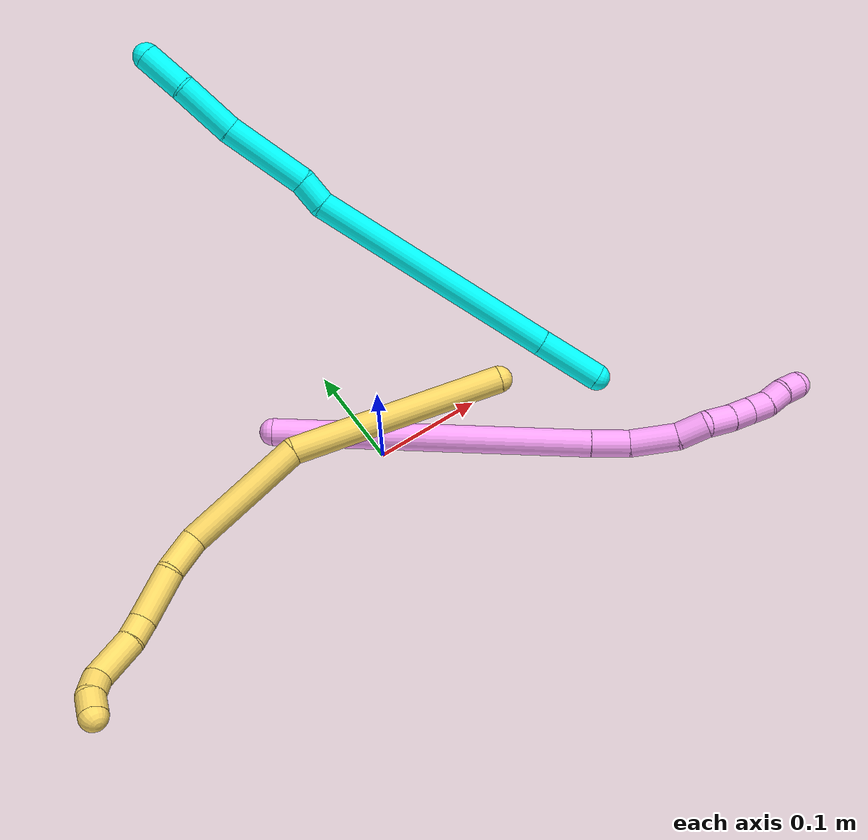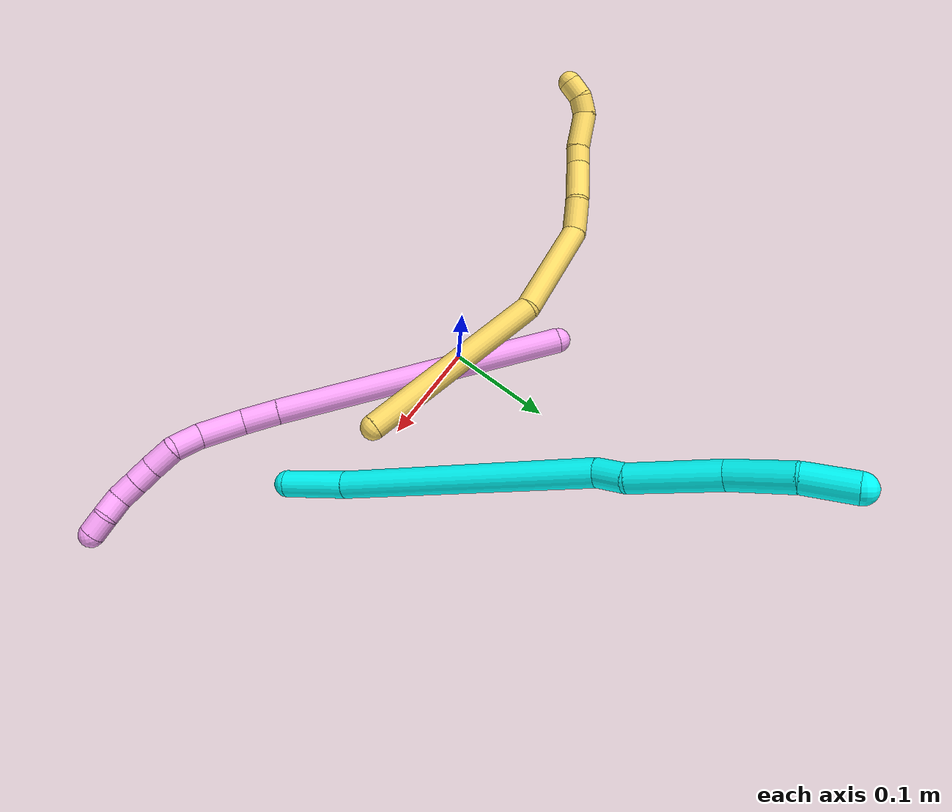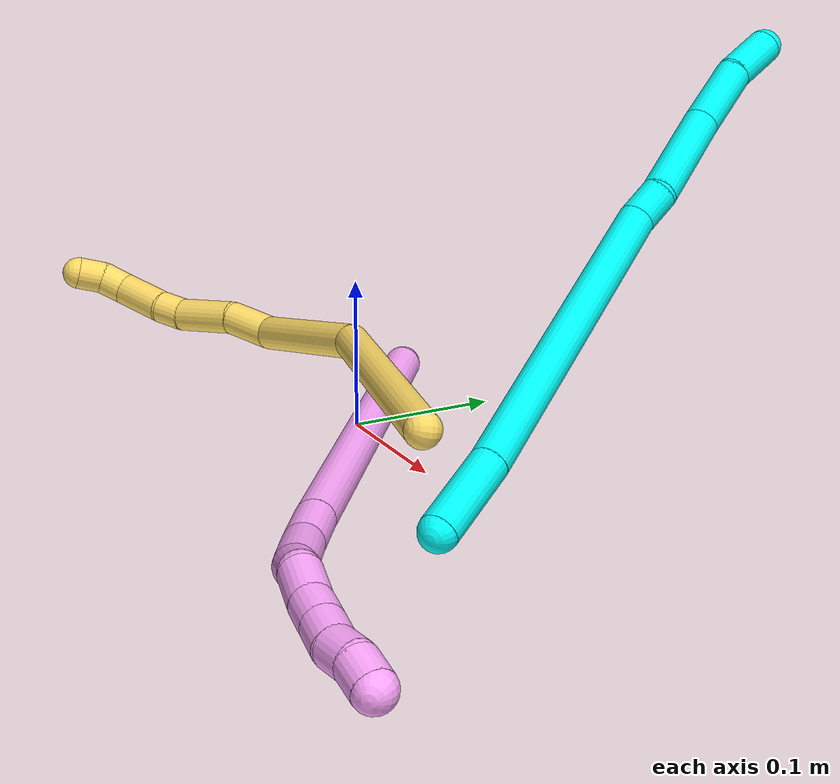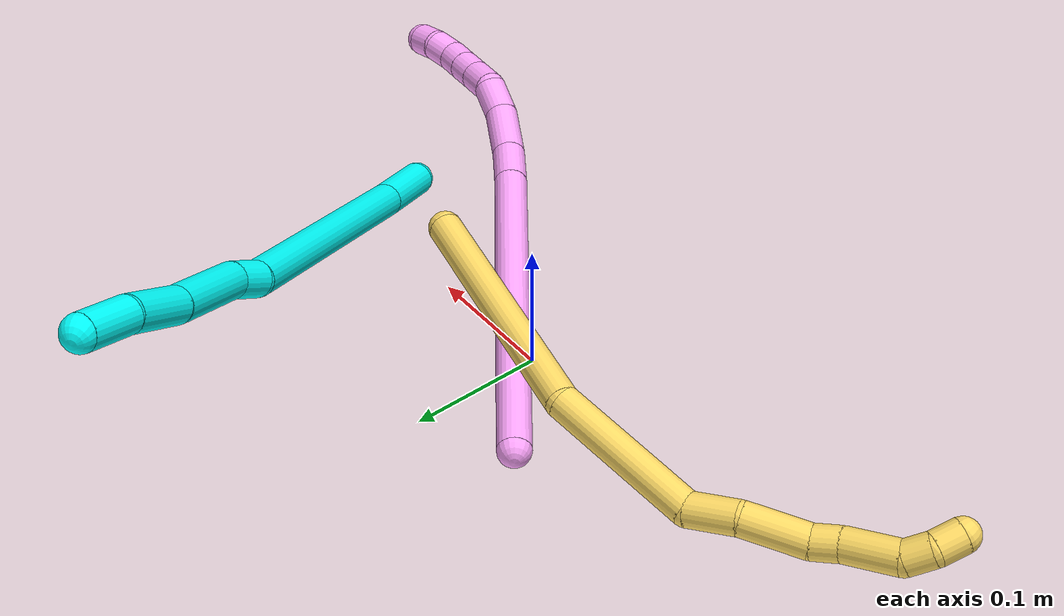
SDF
<sdf version="1.7">
 <world name="default">
  <model name="photoneo_s_sensor">
   <static>1</static>
   <pose>0 0 2 1.57079 1.57079 3.14159</pose>
   <link name="link">
    <inertial><mass>0.1</mass></inertial>
    <sensor name="sensor" type="depth">
     <update_rate>30</update_rate>
     <camera>
      <horizontal_fov>1.22</horizontal_fov>
      <image><width>1920</width><height>1200</height><format>B8G8R8</format></image>
      <clip><near>0.1</near><far>4</far></clip>
      <depth_camera><output>points</output></depth_camera>
     </camera>
     <plugin name="camera_plugin" filename="libgazebo_ros_depth_camera.so">
      <baseline>0.2</baseline>
      <alwaysOn>1</alwaysOn>
      <updateRate>0.0</updateRate>
      <cameraName>camera_ir</cameraName>
      <imageTopicName>/camera/color/image_raw</imageTopicName>
      <cameraInfoTopicName>/camera/color/camera_info</cameraInfoTopicName>
      <depthImageTopicName>/camera/depth/image_raw</depthImageTopicName>
      <depthImageCameraInfoTopicName>/camera/depth/camera_info</depthImageCameraInfoTopicName>
      <pointCloudTopicName>/camera/depth/points</pointCloudTopicName>
      <frameName>fr_optical</frameName>
      <pointCloudCutoff>0.1</pointCloudCutoff>
      <pointCloudCutoffMax>2.0</pointCloudCutoffMax>
      <distortionK1>0</distortionK1>
      <distortionK2>0</distortionK2>
      <distortionK3>0</distortionK3>
      <distortionT1>0</distortionT1>
      <distortionT2>0</distortionT2>
      <CxPrime>0</CxPrime>
      <Cx>0</Cx>
      <Cy>0</Cy>
      <focalLength>0</focalLength>
      <hackBaseline>0</hackBaseline>
     </plugin>
    </sensor>
   </link>
  </model>
  <model name="bin">
   <static>1</static>
   <link name="bottom">
    <collision name="collision-bottom">
     <pose>0 0 -0.01 0 -0 0</pose>
     <geometry><box><size>0.8 0.6 0.02</size></box></geometry>
     <surface>
      <friction><ode><mu>100</mu><mu2>100</mu2></ode></friction>
      <contact><collide_bitmask>65535</collide_bitmask></contact>
     </surface>
    </collision>
   </link>
   <link name="west_wall">
    <collision name="collision-west_wall">
     <pose>-0.41 0 0.1 0 -0 0</pose>
     <geometry><box><size>0.02 0.6 0.2</size></box></geometry>
     <surface>
      <friction><ode><mu>100</mu><mu2>100</mu2></ode></friction>
      <contact><collide_bitmask>65535</collide_bitmask></contact>
     </surface>
    </collision>
   </link>
   <link name="east_wall">
    <collision name="collision-east_wall">
     <pose>0.41 0 0.1 0 -0 0</pose>
     <geometry><box><size>0.02 0.6 0.2</size></box></geometry>
     <surface>
      <friction><ode><mu>100</mu><mu2>100</mu2></ode></friction>
      <contact><collide_bitmask>65535</collide_bitmask></contact>
     </surface>
    </collision>
   </link>
   <link name="south_wall">
    <collision name="collision-south_wall">
     <pose>0 -0.31 0.1 0 -0 0</pose>
     <geometry><box><size>0.8 0.02 0.2</size></box></geometry>
     <surface>
      <friction><ode><mu>100</mu><mu2>100</mu2></ode></friction>
      <contact><collide_bitmask>65535</collide_bitmask></contact>
     </surface>
    </collision>
   </link>
   <link name="north_wall">
    <collision name="collision-north_wall">
     <pose>0 0.31 0.1 0 -0 0</pose>
     <geometry><box><size>0.8 0.02 0.2</size></box></geometry>
     <surface>
      <friction><ode><mu>100</mu><mu2>100</mu2></ode></friction>
      <contact><collide_bitmask>65535</collide_bitmask></contact>
     </surface>
    </collision>
   </link>
  </model>
  <model name="3">
   <static>0</static>
   <link name="3">
    <collision name="collision-cylinder-e_1_1_4">
     <pose>-0.006073 0.006809 0.029231 -0.228858 -0.199635 0.02302</pose>
     <geometry><cylinder><radius>0.0125</radius><length>0.061244</length></cylinder></geometry>
     <surface>
      <friction><ode><mu>1.16</mu><mu2>1.16</mu2><slip1>0</slip1><slip2>0</slip2></ode></friction>
      <contact><ode><kp>1e+06</kp><kd>1</kd><max_vel>0</max_vel><min_depth>0.001</min_depth></ode></contact>
     </surface>
    </collision>
    <visual name="visual-cylinder-e_1_1_4">
     <pose>-0.006073 0.006809 0.029231 -0.228858 -0.199635 0.02302</pose>
     <geometry><cylinder><radius>0.0125</radius><length>0.061244</length></cylinder></geometry>
     <material><ambient>0.003922 1 0.996078 1</ambient></material>
    </visual>
    <collision name="collision-cylinder-e_2_4_5">
     <pose>-0.034601 0.049516 0.169553 -0.312548 -0.190024 0.030028</pose>
     <geometry><cylinder><radius>0.0125</radius><length>0.237773</length></cylinder></geometry>
     <surface>
      <friction><ode><mu>1.16</mu><mu2>1.16</mu2><slip1>0</slip1><slip2>0</slip2></ode></friction>
      <contact><ode><kp>1e+06</kp><kd>1</kd><max_vel>0</max_vel><min_depth>0.001</min_depth></ode></contact>
     </surface>
    </collision>
    <visual name="visual-cylinder-e_2_4_5">
     <pose>-0.034601 0.049516 0.169553 -0.312548 -0.190024 0.030028</pose>
     <geometry><cylinder><radius>0.0125</radius><length>0.237773</length></cylinder></geometry>
     <material><ambient>0.003922 1 0.996078 1</ambient></material>
    </visual>
    <collision name="collision-cylinder-e_3_5_6">
     <pose>-0.063509 0.089551 0.291637 -0.3599 -0.502304 0.093281</pose>
     <geometry><cylinder><radius>0.0125</radius><length>0.026804</length></cylinder></geometry>
     <surface>
      <friction><ode><mu>1.16</mu><mu2>1.16</mu2><slip1>0</slip1><slip2>0</slip2></ode></friction>
      <contact><ode><kp>1e+06</kp><kd>1</kd><max_vel>0</max_vel><min_depth>0.001</min_depth></ode></contact>
     </surface>
    </collision>
    <visual name="visual-cylinder-e_3_5_6">
     <pose>-0.063509 0.089551 0.291637 -0.3599 -0.502304 0.093281</pose>
     <geometry><cylinder><radius>0.0125</radius><length>0.026804</length></cylinder></geometry>
     <material><ambient>0.003922 1 0.996078 1</ambient></material>
    </visual>
    <collision name="collision-cylinder-e_4_6_7">
     <pose>-0.079013 0.106702 0.338456 -0.34846 -0.233177 0.041224</pose>
     <geometry><cylinder><radius>0.0125</radius><length>0.078351</length></cylinder></geometry>
     <surface>
      <friction><ode><mu>1.16</mu><mu2>1.16</mu2><slip1>0</slip1><slip2>0</slip2></ode></friction>
      <contact><ode><kp>1e+06</kp><kd>1</kd><max_vel>0</max_vel><min_depth>0.001</min_depth></ode></contact>
     </surface>
    </collision>
    <visual name="visual-cylinder-e_4_6_7">
     <pose>-0.079013 0.106702 0.338456 -0.34846 -0.233177 0.041224</pose>
     <geometry><cylinder><radius>0.0125</radius><length>0.078351</length></cylinder></geometry>
     <material><ambient>0.003922 1 0.996078 1</ambient></material>
    </visual>
    <collision name="collision-cylinder-e_5_7_8">
     <pose>-0.09738 0.12953 0.397661 -0.397392 -0.352022 0.071591</pose>
     <geometry><cylinder><radius>0.0125</radius><length>0.054027</length></cylinder></geometry>
     <surface>
      <friction><ode><mu>1.16</mu><mu2>1.16</mu2><slip1>0</slip1><slip2>0</slip2></ode></friction>
      <contact><ode><kp>1e+06</kp><kd>1</kd><max_vel>0</max_vel><min_depth>0.001</min_depth></ode></contact>
     </surface>
    </collision>
    <visual name="visual-cylinder-e_5_7_8">
     <pose>-0.09738 0.12953 0.397661 -0.397392 -0.352022 0.071591</pose>
     <geometry><cylinder><radius>0.0125</radius><length>0.054027</length></cylinder></geometry>
     <material><ambient>0.003922 1 0.996078 1</ambient></material>
    </visual>
    <collision name="collision-cylinder-e_6_8_2">
     <pose>-0.114246 0.142727 0.440234 -0.174523 -0.369697 0.032713</pose>
     <geometry><cylinder><radius>0.0125</radius><length>0.041802</length></cylinder></geometry>
     <surface>
      <friction><ode><mu>1.16</mu><mu2>1.16</mu2><slip1>0</slip1><slip2>0</slip2></ode></friction>
      <contact><ode><kp>1e+06</kp><kd>1</kd><max_vel>0</max_vel><min_depth>0.001</min_depth></ode></contact>
     </surface>
    </collision>
    <visual name="visual-cylinder-e_6_8_2">
     <pose>-0.114246 0.142727 0.440234 -0.174523 -0.369697 0.032713</pose>
     <geometry><cylinder><radius>0.0125</radius><length>0.041802</length></cylinder></geometry>
     <material><ambient>0.003922 1 0.996078 1</ambient></material>
    </visual>
    <collision name="collision-sphere-2">
     <pose>-0.121798 0.146111 0.459427 0 -0 0</pose>
     <geometry><sphere><radius>0.0125</radius></sphere></geometry>
     <surface>
      <friction><ode><mu>1.16</mu><mu2>1.16</mu2><slip1>0</slip1><slip2>0</slip2></ode></friction>
      <contact><ode><kp>1e+06</kp><kd>1</kd><max_vel>0</max_vel><min_depth>0.001</min_depth></ode></contact>
     </surface>
    </collision>
    <visual name="visual-sphere-2">
     <pose>-0.121798 0.146111 0.459427 0 -0 0</pose>
     <geometry><sphere><radius>0.0125</radius></sphere></geometry>
     <material><ambient>0.003922 1 0.996078 1</ambient></material>
    </visual>
    <collision name="collision-sphere-4">
     <pose>-0.012145 0.013618 0.058462 0 -0 0</pose>
     <geometry><sphere><radius>0.0125</radius></sphere></geometry>
     <surface>
      <friction><ode><mu>1.16</mu><mu2>1.16</mu2><slip1>0</slip1><slip2>0</slip2></ode></friction>
      <contact><ode><kp>1e+06</kp><kd>1</kd><max_vel>0</max_vel><min_depth>0.001</min_depth></ode></contact>
     </surface>
    </collision>
    <visual name="visual-sphere-4">
     <pose>-0.012145 0.013618 0.058462 0 -0 0</pose>
     <geometry><sphere><radius>0.0125</radius></sphere></geometry>
     <material><ambient>0.003922 1 0.996078 1</ambient></material>
    </visual>
    <collision name="collision-sphere-1">
     <geometry><sphere><radius>0.0125</radius></sphere></geometry>
     <surface>
      <friction><ode><mu>1.16</mu><mu2>1.16</mu2><slip1>0</slip1><slip2>0</slip2></ode></friction>
      <contact><ode><kp>1e+06</kp><kd>1</kd><max_vel>0</max_vel><min_depth>0.001</min_depth></ode></contact>
     </surface>
    </collision>
    <visual name="visual-sphere-1">
     <geometry><sphere><radius>0.0125</radius></sphere></geometry>
     <material><ambient>0.003922 1 0.996078 1</ambient></material>
    </visual>
    <collision name="collision-sphere-8">
     <pose>-0.106694 0.139343 0.421042 0 -0 0</pose>
     <geometry><sphere><radius>0.0125</radius></sphere></geometry>
     <surface>
      <friction><ode><mu>1.16</mu><mu2>1.16</mu2><slip1>0</slip1><slip2>0</slip2></ode></friction>
      <contact><ode><kp>1e+06</kp><kd>1</kd><max_vel>0</max_vel><min_depth>0.001</min_depth></ode></contact>
     </surface>
    </collision>
    <visual name="visual-sphere-8">
     <pose>-0.106694 0.139343 0.421042 0 -0 0</pose>
     <geometry><sphere><radius>0.0125</radius></sphere></geometry>
     <material><ambient>0.003922 1 0.996078 1</ambient></material>
    </visual>
    <collision name="collision-sphere-5">
     <pose>-0.057056 0.085414 0.280643 0 -0 0</pose>
     <geometry><sphere><radius>0.0125</radius></sphere></geometry>
     <surface>
      <friction><ode><mu>1.16</mu><mu2>1.16</mu2><slip1>0</slip1><slip2>0</slip2></ode></friction>
      <contact><ode><kp>1e+06</kp><kd>1</kd><max_vel>0</max_vel><min_depth>0.001</min_depth></ode></contact>
     </surface>
    </collision>
    <visual name="visual-sphere-5">
     <pose>-0.057056 0.085414 0.280643 0 -0 0</pose>
     <geometry><sphere><radius>0.0125</radius></sphere></geometry>
     <material><ambient>0.003922 1 0.996078 1</ambient></material>
    </visual>
    <collision name="collision-sphere-6">
     <pose>-0.069961 0.093687 0.302631 0 -0 0</pose>
     <geometry><sphere><radius>0.0125</radius></sphere></geometry>
     <surface>
      <friction><ode><mu>1.16</mu><mu2>1.16</mu2><slip1>0</slip1><slip2>0</slip2></ode></friction>
      <contact><ode><kp>1e+06</kp><kd>1</kd><max_vel>0</max_vel><min_depth>0.001</min_depth></ode></contact>
     </surface>
    </collision>
    <visual name="visual-sphere-6">
     <pose>-0.069961 0.093687 0.302631 0 -0 0</pose>
     <geometry><sphere><radius>0.0125</radius></sphere></geometry>
     <material><ambient>0.003922 1 0.996078 1</ambient></material>
    </visual>
    <collision name="collision-sphere-7">
     <pose>-0.088066 0.119716 0.37428 0 -0 0</pose>
     <geometry><sphere><radius>0.0125</radius></sphere></geometry>
     <surface>
      <friction><ode><mu>1.16</mu><mu2>1.16</mu2><slip1>0</slip1><slip2>0</slip2></ode></friction>
      <contact><ode><kp>1e+06</kp><kd>1</kd><max_vel>0</max_vel><min_depth>0.001</min_depth></ode></contact>
     </surface>
    </collision>
    <visual name="visual-sphere-7">
     <pose>-0.088066 0.119716 0.37428 0 -0 0</pose>
     <geometry><sphere><radius>0.0125</radius></sphere></geometry>
     <material><ambient>0.003922 1 0.996078 1</ambient></material>
    </visual>
    <inertial>
     <pose>-0.053058 0.071831 0.232655 0 -0 0</pose>
     <mass>0.5</mass>
     <inertia>
      <ixx>0.001223</ixx>
      <ixy>0</ixy>
      <ixz>0</ixz>
      <iyy>0.001211</iyy>
      <iyz>0</iyz>
      <izz>-9.5e-05</izz>
     </inertia>
    </inertial>
   </link>
   <pose>0.206362 -0.048557 0.011493 1.4827 0.434423 -2.55204</pose>
  </model>
  <model name="4">
   <static>0</static>
   <link name="4">
    <collision name="collision-cylinder-e_1_1_4">
     <pose>-0.000935 -0.001697 0.143821 0.011798 -0.006503 -3.8e-05</pose>
     <geometry><cylinder><radius>0.0125</radius><length>0.287668</length></cylinder></geometry>
     <surface>
      <friction><ode><mu>1.16</mu><mu2>1.16</mu2><slip1>0</slip1><slip2>0</slip2></ode></friction>
      <contact><ode><kp>1e+06</kp><kd>1</kd><max_vel>0</max_vel><min_depth>0.001</min_depth></ode></contact>
     </surface>
    </collision>
    <visual name="visual-cylinder-e_1_1_4">
     <pose>-0.000935 -0.001697 0.143821 0.011798 -0.006503 -3.8e-05</pose>
     <geometry><cylinder><radius>0.0125</radius><length>0.287668</length></cylinder></geometry>
     <material><ambient>1 0.65098 0.996078 1</ambient></material>
    </visual>
    <collision name="collision-cylinder-e_2_4_5">
     <pose>-0.001427 -0.003927 0.305114 0.030495 0.025396 0.000387</pose>
     <geometry><cylinder><radius>0.0125</radius><length>0.034972</length></cylinder></geometry>
     <surface>
      <friction><ode><mu>1.16</mu><mu2>1.16</mu2><slip1>0</slip1><slip2>0</slip2></ode></friction>
      <contact><ode><kp>1e+06</kp><kd>1</kd><max_vel>0</max_vel><min_depth>0.001</min_depth></ode></contact>
     </surface>
    </collision>
    <visual name="visual-cylinder-e_2_4_5">
     <pose>-0.001427 -0.003927 0.305114 0.030495 0.025396 0.000387</pose>
     <geometry><cylinder><radius>0.0125</radius><length>0.034972</length></cylinder></geometry>
     <material><ambient>1 0.65098 0.996078 1</ambient></material>
    </visual>
    <collision name="collision-cylinder-e_3_5_6">
     <pose>0.00292 -0.003911 0.343997 -0.025625 0.180262 -0.002316</pose>
     <geometry><cylinder><radius>0.0125</radius><length>0.04354</length></cylinder></geometry>
     <surface>
      <friction><ode><mu>1.16</mu><mu2>1.16</mu2><slip1>0</slip1><slip2>0</slip2></ode></friction>
      <contact><ode><kp>1e+06</kp><kd>1</kd><max_vel>0</max_vel><min_depth>0.001</min_depth></ode></contact>
     </surface>
    </collision>
    <visual name="visual-cylinder-e_3_5_6">
     <pose>0.00292 -0.003911 0.343997 -0.025625 0.180262 -0.002316</pose>
     <geometry><cylinder><radius>0.0125</radius><length>0.04354</length></cylinder></geometry>
     <material><ambient>1 0.65098 0.996078 1</ambient></material>
    </visual>
    <collision name="collision-cylinder-e_4_6_7">
     <pose>0.012792 -0.00296 0.377897 -0.03217 0.445579 -0.007289</pose>
     <geometry><cylinder><radius>0.0125</radius><length>0.027695</length></cylinder></geometry>
     <surface>
      <friction><ode><mu>1.16</mu><mu2>1.16</mu2><slip1>0</slip1><slip2>0</slip2></ode></friction>
      <contact><ode><kp>1e+06</kp><kd>1</kd><max_vel>0</max_vel><min_depth>0.001</min_depth></ode></contact>
     </surface>
    </collision>
    <visual name="visual-cylinder-e_4_6_7">
     <pose>0.012792 -0.00296 0.377897 -0.03217 0.445579 -0.007289</pose>
     <geometry><cylinder><radius>0.0125</radius><length>0.027695</length></cylinder></geometry>
     <material><ambient>1 0.65098 0.996078 1</ambient></material>
    </visual>
    <collision name="collision-cylinder-e_5_7_8">
     <pose>0.021377 -0.008138 0.401785 0.455202 0.203419 0.047269</pose>
     <geometry><cylinder><radius>0.0125</radius><length>0.025917</length></cylinder></geometry>
     <surface>
      <friction><ode><mu>1.16</mu><mu2>1.16</mu2><slip1>0</slip1><slip2>0</slip2></ode></friction>
      <contact><ode><kp>1e+06</kp><kd>1</kd><max_vel>0</max_vel><min_depth>0.001</min_depth></ode></contact>
     </surface>
    </collision>
    <visual name="visual-cylinder-e_5_7_8">
     <pose>0.021377 -0.008138 0.401785 0.455202 0.203419 0.047269</pose>
     <geometry><cylinder><radius>0.0125</radius><length>0.025917</length></cylinder></geometry>
     <material><ambient>1 0.65098 0.996078 1</ambient></material>
    </visual>
    <collision name="collision-cylinder-e_6_8_9">
     <pose>0.027085 -0.017801 0.421841 0.440739 0.312193 0.070478</pose>
     <geometry><cylinder><radius>0.0125</radius><length>0.020117</length></cylinder></geometry>
     <surface>
      <friction><ode><mu>1.16</mu><mu2>1.16</mu2><slip1>0</slip1><slip2>0</slip2></ode></friction>
      <contact><ode><kp>1e+06</kp><kd>1</kd><max_vel>0</max_vel><min_depth>0.001</min_depth></ode></contact>
     </surface>
    </collision>
    <visual name="visual-cylinder-e_6_8_9">
     <pose>0.027085 -0.017801 0.421841 0.440739 0.312193 0.070478</pose>
     <geometry><cylinder><radius>0.0125</radius><length>0.020117</length></cylinder></geometry>
     <material><ambient>1 0.65098 0.996078 1</ambient></material>
    </visual>
    <collision name="collision-cylinder-e_7_9_10">
     <pose>0.03317 -0.025921 0.439162 0.436022 0.303785 0.067795</pose>
     <geometry><cylinder><radius>0.0125</radius><length>0.020032</length></cylinder></geometry>
     <surface>
      <friction><ode><mu>1.16</mu><mu2>1.16</mu2><slip1>0</slip1><slip2>0</slip2></ode></friction>
      <contact><ode><kp>1e+06</kp><kd>1</kd><max_vel>0</max_vel><min_depth>0.001</min_depth></ode></contact>
     </surface>
    </collision>
    <visual name="visual-cylinder-e_7_9_10">
     <pose>0.03317 -0.025921 0.439162 0.436022 0.303785 0.067795</pose>
     <geometry><cylinder><radius>0.0125</radius><length>0.020032</length></cylinder></geometry>
     <material><ambient>1 0.65098 0.996078 1</ambient></material>
    </visual>
    <collision name="collision-cylinder-e_8_10_11">
     <pose>0.041633 -0.033989 0.455198 0.500423 0.576767 0.15134</pose>
     <geometry><cylinder><radius>0.0125</radius><length>0.02005</length></cylinder></geometry>
     <surface>
      <friction><ode><mu>1.16</mu><mu2>1.16</mu2><slip1>0</slip1><slip2>0</slip2></ode></friction>
      <contact><ode><kp>1e+06</kp><kd>1</kd><max_vel>0</max_vel><min_depth>0.001</min_depth></ode></contact>
     </surface>
    </collision>
    <visual name="visual-cylinder-e_8_10_11">
     <pose>0.041633 -0.033989 0.455198 0.500423 0.576767 0.15134</pose>
     <geometry><cylinder><radius>0.0125</radius><length>0.02005</length></cylinder></geometry>
     <material><ambient>1 0.65098 0.996078 1</ambient></material>
    </visual>
    <collision name="collision-cylinder-e_9_11_2">
     <pose>0.050176 -0.043623 0.470267 0.629201 0.312547 0.102452</pose>
     <geometry><cylinder><radius>0.0125</radius><length>0.020009</length></cylinder></geometry>
     <surface>
      <friction><ode><mu>1.16</mu><mu2>1.16</mu2><slip1>0</slip1><slip2>0</slip2></ode></friction>
      <contact><ode><kp>1e+06</kp><kd>1</kd><max_vel>0</max_vel><min_depth>0.001</min_depth></ode></contact>
     </surface>
    </collision>
    <visual name="visual-cylinder-e_9_11_2">
     <pose>0.050176 -0.043623 0.470267 0.629201 0.312547 0.102452</pose>
     <geometry><cylinder><radius>0.0125</radius><length>0.020009</length></cylinder></geometry>
     <material><ambient>1 0.65098 0.996078 1</ambient></material>
    </visual>
    <collision name="collision-sphere-2">
     <pose>0.053252 -0.049226 0.477964 0 -0 0</pose>
     <geometry><sphere><radius>0.0125</radius></sphere></geometry>
     <surface>
      <friction><ode><mu>1.16</mu><mu2>1.16</mu2><slip1>0</slip1><slip2>0</slip2></ode></friction>
      <contact><ode><kp>1e+06</kp><kd>1</kd><max_vel>0</max_vel><min_depth>0.001</min_depth></ode></contact>
     </surface>
    </collision>
    <visual name="visual-sphere-2">
     <pose>0.053252 -0.049226 0.477964 0 -0 0</pose>
     <geometry><sphere><radius>0.0125</radius></sphere></geometry>
     <material><ambient>1 0.65098 0.996078 1</ambient></material>
    </visual>
    <collision name="collision-sphere-11">
     <pose>0.0471 -0.038021 0.46257 0 -0 0</pose>
     <geometry><sphere><radius>0.0125</radius></sphere></geometry>
     <surface>
      <friction><ode><mu>1.16</mu><mu2>1.16</mu2><slip1>0</slip1><slip2>0</slip2></ode></friction>
      <contact><ode><kp>1e+06</kp><kd>1</kd><max_vel>0</max_vel><min_depth>0.001</min_depth></ode></contact>
     </surface>
    </collision>
    <visual name="visual-sphere-11">
     <pose>0.0471 -0.038021 0.46257 0 -0 0</pose>
     <geometry><sphere><radius>0.0125</radius></sphere></geometry>
     <material><ambient>1 0.65098 0.996078 1</ambient></material>
    </visual>
    <collision name="collision-sphere-10">
     <pose>0.036166 -0.029958 0.447825 0 -0 0</pose>
     <geometry><sphere><radius>0.0125</radius></sphere></geometry>
     <surface>
      <friction><ode><mu>1.16</mu><mu2>1.16</mu2><slip1>0</slip1><slip2>0</slip2></ode></friction>
      <contact><ode><kp>1e+06</kp><kd>1</kd><max_vel>0</max_vel><min_depth>0.001</min_depth></ode></contact>
     </surface>
    </collision>
    <visual name="visual-sphere-10">
     <pose>0.036166 -0.029958 0.447825 0 -0 0</pose>
     <geometry><sphere><radius>0.0125</radius></sphere></geometry>
     <material><ambient>1 0.65098 0.996078 1</ambient></material>
    </visual>
    <collision name="collision-sphere-9">
     <pose>0.030174 -0.021885 0.430499 0 -0 0</pose>
     <geometry><sphere><radius>0.0125</radius></sphere></geometry>
     <surface>
      <friction><ode><mu>1.16</mu><mu2>1.16</mu2><slip1>0</slip1><slip2>0</slip2></ode></friction>
      <contact><ode><kp>1e+06</kp><kd>1</kd><max_vel>0</max_vel><min_depth>0.001</min_depth></ode></contact>
     </surface>
    </collision>
    <visual name="visual-sphere-9">
     <pose>0.030174 -0.021885 0.430499 0 -0 0</pose>
     <geometry><sphere><radius>0.0125</radius></sphere></geometry>
     <material><ambient>1 0.65098 0.996078 1</ambient></material>
    </visual>
    <collision name="collision-sphere-4">
     <pose>-0.001871 -0.003394 0.287642 0 -0 0</pose>
     <geometry><sphere><radius>0.0125</radius></sphere></geometry>
     <surface>
      <friction><ode><mu>1.16</mu><mu2>1.16</mu2><slip1>0</slip1><slip2>0</slip2></ode></friction>
      <contact><ode><kp>1e+06</kp><kd>1</kd><max_vel>0</max_vel><min_depth>0.001</min_depth></ode></contact>
     </surface>
    </collision>
    <visual name="visual-sphere-4">
     <pose>-0.001871 -0.003394 0.287642 0 -0 0</pose>
     <geometry><sphere><radius>0.0125</radius></sphere></geometry>
     <material><ambient>1 0.65098 0.996078 1</ambient></material>
    </visual>
    <collision name="collision-sphere-1">
     <geometry><sphere><radius>0.0125</radius></sphere></geometry>
     <surface>
      <friction><ode><mu>1.16</mu><mu2>1.16</mu2><slip1>0</slip1><slip2>0</slip2></ode></friction>
      <contact><ode><kp>1e+06</kp><kd>1</kd><max_vel>0</max_vel><min_depth>0.001</min_depth></ode></contact>
     </surface>
    </collision>
    <visual name="visual-sphere-1">
     <geometry><sphere><radius>0.0125</radius></sphere></geometry>
     <material><ambient>1 0.65098 0.996078 1</ambient></material>
    </visual>
    <collision name="collision-sphere-8">
     <pose>0.023995 -0.013717 0.413184 0 -0 0</pose>
     <geometry><sphere><radius>0.0125</radius></sphere></geometry>
     <surface>
      <friction><ode><mu>1.16</mu><mu2>1.16</mu2><slip1>0</slip1><slip2>0</slip2></ode></friction>
      <contact><ode><kp>1e+06</kp><kd>1</kd><max_vel>0</max_vel><min_depth>0.001</min_depth></ode></contact>
     </surface>
    </collision>
    <visual name="visual-sphere-8">
     <pose>0.023995 -0.013717 0.413184 0 -0 0</pose>
     <geometry><sphere><radius>0.0125</radius></sphere></geometry>
     <material><ambient>1 0.65098 0.996078 1</ambient></material>
    </visual>
    <collision name="collision-sphere-5">
     <pose>-0.000983 -0.00446 0.322587 0 -0 0</pose>
     <geometry><sphere><radius>0.0125</radius></sphere></geometry>
     <surface>
      <friction><ode><mu>1.16</mu><mu2>1.16</mu2><slip1>0</slip1><slip2>0</slip2></ode></friction>
      <contact><ode><kp>1e+06</kp><kd>1</kd><max_vel>0</max_vel><min_depth>0.001</min_depth></ode></contact>
     </surface>
    </collision>
    <visual name="visual-sphere-5">
     <pose>-0.000983 -0.00446 0.322587 0 -0 0</pose>
     <geometry><sphere><radius>0.0125</radius></sphere></geometry>
     <material><ambient>1 0.65098 0.996078 1</ambient></material>
    </visual>
    <collision name="collision-sphere-6">
     <pose>0.006823 -0.003362 0.365408 0 -0 0</pose>
     <geometry><sphere><radius>0.0125</radius></sphere></geometry>
     <surface>
      <friction><ode><mu>1.16</mu><mu2>1.16</mu2><slip1>0</slip1><slip2>0</slip2></ode></friction>
      <contact><ode><kp>1e+06</kp><kd>1</kd><max_vel>0</max_vel><min_depth>0.001</min_depth></ode></contact>
     </surface>
    </collision>
    <visual name="visual-sphere-6">
     <pose>0.006823 -0.003362 0.365408 0 -0 0</pose>
     <geometry><sphere><radius>0.0125</radius></sphere></geometry>
     <material><ambient>1 0.65098 0.996078 1</ambient></material>
    </visual>
    <collision name="collision-sphere-7">
     <pose>0.01876 -0.002558 0.390386 0 -0 0</pose>
     <geometry><sphere><radius>0.0125</radius></sphere></geometry>
     <surface>
      <friction><ode><mu>1.16</mu><mu2>1.16</mu2><slip1>0</slip1><slip2>0</slip2></ode></friction>
      <contact><ode><kp>1e+06</kp><kd>1</kd><max_vel>0</max_vel><min_depth>0.001</min_depth></ode></contact>
     </surface>
    </collision>
    <visual name="visual-sphere-7">
     <pose>0.01876 -0.002558 0.390386 0 -0 0</pose>
     <geometry><sphere><radius>0.0125</radius></sphere></geometry>
     <material><ambient>1 0.65098 0.996078 1</ambient></material>
    </visual>
    <inertial>
     <pose>0.007529 -0.007041 0.247439 0 -0 0</pose>
     <mass>0.5</mass>
     <inertia>
      <ixx>0.002023</ixx>
      <ixy>0</ixy>
      <ixz>0</ixz>
      <iyy>0.002015</iyy>
      <iyz>0</iyz>
      <izz>7.2e-05</izz>
     </inertia>
    </inertial>
   </link>
   <pose>-0.071073 0.071351 0.0115 1.55397 -0.658137 0.92836</pose>
  </model>
  <model name="5">
   <static>0</static>
   <link name="5">
    <collision name="collision-cylinder-e_1_1_4">
     <pose>-0.094127 -0.018153 0.02164 0.698004 -1.27927 -0.528784</pose>
     <geometry><cylinder><radius>0.0125</radius><length>0.196548</length></cylinder></geometry>
     <surface>
      <friction><ode><mu>1.16</mu><mu2>1.16</mu2><slip1>0</slip1><slip2>0</slip2></ode></friction>
      <contact><ode><kp>1e+06</kp><kd>1</kd><max_vel>0</max_vel><min_depth>0.001</min_depth></ode></contact>
     </surface>
    </collision>
    <visual name="visual-cylinder-e_1_1_4">
     <pose>-0.094127 -0.018153 0.02164 0.698004 -1.27927 -0.528784</pose>
     <geometry><cylinder><radius>0.0125</radius><length>0.196548</length></cylinder></geometry>
     <material><ambient>1 0.858824 0.4 1</ambient></material>
    </visual>
    <collision name="collision-cylinder-e_2_4_5">
     <pose>-0.245601 -0.032412 0.038412 -2.4668 -1.46251 2.39612</pose>
     <geometry><cylinder><radius>0.0125</radius><length>0.115369</length></cylinder></geometry>
     <surface>
      <friction><ode><mu>1.16</mu><mu2>1.16</mu2><slip1>0</slip1><slip2>0</slip2></ode></friction>
      <contact><ode><kp>1e+06</kp><kd>1</kd><max_vel>0</max_vel><min_depth>0.001</min_depth></ode></contact>
     </surface>
    </collision>
    <visual name="visual-cylinder-e_2_4_5">
     <pose>-0.245601 -0.032412 0.038412 -2.4668 -1.46251 2.39612</pose>
     <geometry><cylinder><radius>0.0125</radius><length>0.115369</length></cylinder></geometry>
     <material><ambient>1 0.858824 0.4 1</ambient></material>
    </visual>
    <collision name="collision-cylinder-e_3_5_6">
     <pose>-0.318466 -0.031718 0.024069 2.81582 -0.998298 -2.55605</pose>
     <geometry><cylinder><radius>0.0125</radius><length>0.036923</length></cylinder></geometry>
     <surface>
      <friction><ode><mu>1.16</mu><mu2>1.16</mu2><slip1>0</slip1><slip2>0</slip2></ode></friction>
      <contact><ode><kp>1e+06</kp><kd>1</kd><max_vel>0</max_vel><min_depth>0.001</min_depth></ode></contact>
     </surface>
    </collision>
    <visual name="visual-cylinder-e_3_5_6">
     <pose>-0.318466 -0.031718 0.024069 2.81582 -0.998298 -2.55605</pose>
     <geometry><cylinder><radius>0.0125</radius><length>0.036923</length></cylinder></geometry>
     <material><ambient>1 0.858824 0.4 1</ambient></material>
    </visual>
    <collision name="collision-cylinder-e_4_6_7">
     <pose>-0.354832 -0.032712 0.002914 -2.95487 -1.05261 2.822</pose>
     <geometry><cylinder><radius>0.0125</radius><length>0.047998</length></cylinder></geometry>
     <surface>
      <friction><ode><mu>1.16</mu><mu2>1.16</mu2><slip1>0</slip1><slip2>0</slip2></ode></friction>
      <contact><ode><kp>1e+06</kp><kd>1</kd><max_vel>0</max_vel><min_depth>0.001</min_depth></ode></contact>
     </surface>
    </collision>
    <visual name="visual-cylinder-e_4_6_7">
     <pose>-0.354832 -0.032712 0.002914 -2.95487 -1.05261 2.822</pose>
     <geometry><cylinder><radius>0.0125</radius><length>0.047998</length></cylinder></geometry>
     <material><ambient>1 0.858824 0.4 1</ambient></material>
    </visual>
    <collision name="collision-cylinder-e_5_7_8">
     <pose>-0.383765 -0.032042 -0.015041 2.90135 -0.896638 -2.64984</pose>
     <geometry><cylinder><radius>0.0125</radius><length>0.020698</length></cylinder></geometry>
     <surface>
      <friction><ode><mu>1.16</mu><mu2>1.16</mu2><slip1>0</slip1><slip2>0</slip2></ode></friction>
      <contact><ode><kp>1e+06</kp><kd>1</kd><max_vel>0</max_vel><min_depth>0.001</min_depth></ode></contact>
     </surface>
    </collision>
    <visual name="visual-cylinder-e_5_7_8">
     <pose>-0.383765 -0.032042 -0.015041 2.90135 -0.896638 -2.64984</pose>
     <geometry><cylinder><radius>0.0125</radius><length>0.020698</length></cylinder></geometry>
     <material><ambient>1 0.858824 0.4 1</ambient></material>
    </visual>
    <collision name="collision-cylinder-e_6_8_9">
     <pose>-0.410045 -0.038043 -0.030578 2.69251 -1.05647 -2.39548</pose>
     <geometry><cylinder><radius>0.0125</radius><length>0.041798</length></cylinder></geometry>
     <surface>
      <friction><ode><mu>1.16</mu><mu2>1.16</mu2><slip1>0</slip1><slip2>0</slip2></ode></friction>
      <contact><ode><kp>1e+06</kp><kd>1</kd><max_vel>0</max_vel><min_depth>0.001</min_depth></ode></contact>
     </surface>
    </collision>
    <visual name="visual-cylinder-e_6_8_9">
     <pose>-0.410045 -0.038043 -0.030578 2.69251 -1.05647 -2.39548</pose>
     <geometry><cylinder><radius>0.0125</radius><length>0.041798</length></cylinder></geometry>
     <material><ambient>1 0.858824 0.4 1</ambient></material>
    </visual>
    <collision name="collision-cylinder-e_7_9_10">
     <pose>-0.433514 -0.045775 -0.047972 2.75948 -0.541669 -1.92471</pose>
     <geometry><cylinder><radius>0.0125</radius><length>0.020458</length></cylinder></geometry>
     <surface>
      <friction><ode><mu>1.16</mu><mu2>1.16</mu2><slip1>0</slip1><slip2>0</slip2></ode></friction>
      <contact><ode><kp>1e+06</kp><kd>1</kd><max_vel>0</max_vel><min_depth>0.001</min_depth></ode></contact>
     </surface>
    </collision>
    <visual name="visual-cylinder-e_7_9_10">
     <pose>-0.433514 -0.045775 -0.047972 2.75948 -0.541669 -1.92471</pose>
     <geometry><cylinder><radius>0.0125</radius><length>0.020458</length></cylinder></geometry>
     <material><ambient>1 0.858824 0.4 1</ambient></material>
    </visual>
    <collision name="collision-cylinder-e_8_10_2">
     <pose>-0.441483 -0.049613 -0.065826 3.08306 -0.270039 -2.71709</pose>
     <geometry><cylinder><radius>0.0125</radius><length>0.020208</length></cylinder></geometry>
     <surface>
      <friction><ode><mu>1.16</mu><mu2>1.16</mu2><slip1>0</slip1><slip2>0</slip2></ode></friction>
      <contact><ode><kp>1e+06</kp><kd>1</kd><max_vel>0</max_vel><min_depth>0.001</min_depth></ode></contact>
     </surface>
    </collision>
    <visual name="visual-cylinder-e_8_10_2">
     <pose>-0.441483 -0.049613 -0.065826 3.08306 -0.270039 -2.71709</pose>
     <geometry><cylinder><radius>0.0125</radius><length>0.020208</length></cylinder></geometry>
     <material><ambient>1 0.858824 0.4 1</ambient></material>
    </visual>
    <collision name="collision-sphere-2">
     <pose>-0.444179 -0.050182 -0.075547 0 -0 0</pose>
     <geometry><sphere><radius>0.0125</radius></sphere></geometry>
     <surface>
      <friction><ode><mu>1.16</mu><mu2>1.16</mu2><slip1>0</slip1><slip2>0</slip2></ode></friction>
      <contact><ode><kp>1e+06</kp><kd>1</kd><max_vel>0</max_vel><min_depth>0.001</min_depth></ode></contact>
     </surface>
    </collision>
    <visual name="visual-sphere-2">
     <pose>-0.444179 -0.050182 -0.075547 0 -0 0</pose>
     <geometry><sphere><radius>0.0125</radius></sphere></geometry>
     <material><ambient>1 0.858824 0.4 1</ambient></material>
    </visual>
    <collision name="collision-sphere-10">
     <pose>-0.438788 -0.049043 -0.056105 0 -0 0</pose>
     <geometry><sphere><radius>0.0125</radius></sphere></geometry>
     <surface>
      <friction><ode><mu>1.16</mu><mu2>1.16</mu2><slip1>0</slip1><slip2>0</slip2></ode></friction>
      <contact><ode><kp>1e+06</kp><kd>1</kd><max_vel>0</max_vel><min_depth>0.001</min_depth></ode></contact>
     </surface>
    </collision>
    <visual name="visual-sphere-10">
     <pose>-0.438788 -0.049043 -0.056105 0 -0 0</pose>
     <geometry><sphere><radius>0.0125</radius></sphere></geometry>
     <material><ambient>1 0.858824 0.4 1</ambient></material>
    </visual>
    <collision name="collision-sphere-9">
     <pose>-0.42824 -0.042506 -0.03984 0 -0 0</pose>
     <geometry><sphere><radius>0.0125</radius></sphere></geometry>
     <surface>
      <friction><ode><mu>1.16</mu><mu2>1.16</mu2><slip1>0</slip1><slip2>0</slip2></ode></friction>
      <contact><ode><kp>1e+06</kp><kd>1</kd><max_vel>0</max_vel><min_depth>0.001</min_depth></ode></contact>
     </surface>
    </collision>
    <visual name="visual-sphere-9">
     <pose>-0.42824 -0.042506 -0.03984 0 -0 0</pose>
     <geometry><sphere><radius>0.0125</radius></sphere></geometry>
     <material><ambient>1 0.858824 0.4 1</ambient></material>
    </visual>
    <collision name="collision-sphere-4">
     <pose>-0.188255 -0.036307 0.04328 0 -0 0</pose>
     <geometry><sphere><radius>0.0125</radius></sphere></geometry>
     <surface>
      <friction><ode><mu>1.16</mu><mu2>1.16</mu2><slip1>0</slip1><slip2>0</slip2></ode></friction>
      <contact><ode><kp>1e+06</kp><kd>1</kd><max_vel>0</max_vel><min_depth>0.001</min_depth></ode></contact>
     </surface>
    </collision>
    <visual name="visual-sphere-4">
     <pose>-0.188255 -0.036307 0.04328 0 -0 0</pose>
     <geometry><sphere><radius>0.0125</radius></sphere></geometry>
     <material><ambient>1 0.858824 0.4 1</ambient></material>
    </visual>
    <collision name="collision-sphere-1">
     <geometry><sphere><radius>0.0125</radius></sphere></geometry>
     <surface>
      <friction><ode><mu>1.16</mu><mu2>1.16</mu2><slip1>0</slip1><slip2>0</slip2></ode></friction>
      <contact><ode><kp>1e+06</kp><kd>1</kd><max_vel>0</max_vel><min_depth>0.001</min_depth></ode></contact>
     </surface>
    </collision>
    <visual name="visual-sphere-1">
     <geometry><sphere><radius>0.0125</radius></sphere></geometry>
     <material><ambient>1 0.858824 0.4 1</ambient></material>
    </visual>
    <collision name="collision-sphere-8">
     <pose>-0.39185 -0.03358 -0.021316 0 -0 0</pose>
     <geometry><sphere><radius>0.0125</radius></sphere></geometry>
     <surface>
      <friction><ode><mu>1.16</mu><mu2>1.16</mu2><slip1>0</slip1><slip2>0</slip2></ode></friction>
      <contact><ode><kp>1e+06</kp><kd>1</kd><max_vel>0</max_vel><min_depth>0.001</min_depth></ode></contact>
     </surface>
    </collision>
    <visual name="visual-sphere-8">
     <pose>-0.39185 -0.03358 -0.021316 0 -0 0</pose>
     <geometry><sphere><radius>0.0125</radius></sphere></geometry>
     <material><ambient>1 0.858824 0.4 1</ambient></material>
    </visual>
    <collision name="collision-sphere-5">
     <pose>-0.302948 -0.028517 0.033544 0 -0 0</pose>
     <geometry><sphere><radius>0.0125</radius></sphere></geometry>
     <surface>
      <friction><ode><mu>1.16</mu><mu2>1.16</mu2><slip1>0</slip1><slip2>0</slip2></ode></friction>
      <contact><ode><kp>1e+06</kp><kd>1</kd><max_vel>0</max_vel><min_depth>0.001</min_depth></ode></contact>
     </surface>
    </collision>
    <visual name="visual-sphere-5">
     <pose>-0.302948 -0.028517 0.033544 0 -0 0</pose>
     <geometry><sphere><radius>0.0125</radius></sphere></geometry>
     <material><ambient>1 0.858824 0.4 1</ambient></material>
    </visual>
    <collision name="collision-sphere-6">
     <pose>-0.333983 -0.034919 0.014594 0 -0 0</pose>
     <geometry><sphere><radius>0.0125</radius></sphere></geometry>
     <surface>
      <friction><ode><mu>1.16</mu><mu2>1.16</mu2><slip1>0</slip1><slip2>0</slip2></ode></friction>
      <contact><ode><kp>1e+06</kp><kd>1</kd><max_vel>0</max_vel><min_depth>0.001</min_depth></ode></contact>
     </surface>
    </collision>
    <visual name="visual-sphere-6">
     <pose>-0.333983 -0.034919 0.014594 0 -0 0</pose>
     <geometry><sphere><radius>0.0125</radius></sphere></geometry>
     <material><ambient>1 0.858824 0.4 1</ambient></material>
    </visual>
    <collision name="collision-sphere-7">
     <pose>-0.37568 -0.030505 -0.008767 0 -0 0</pose>
     <geometry><sphere><radius>0.0125</radius></sphere></geometry>
     <surface>
      <friction><ode><mu>1.16</mu><mu2>1.16</mu2><slip1>0</slip1><slip2>0</slip2></ode></friction>
      <contact><ode><kp>1e+06</kp><kd>1</kd><max_vel>0</max_vel><min_depth>0.001</min_depth></ode></contact>
     </surface>
    </collision>
    <visual name="visual-sphere-7">
     <pose>-0.37568 -0.030505 -0.008767 0 -0 0</pose>
     <geometry><sphere><radius>0.0125</radius></sphere></geometry>
     <material><ambient>1 0.858824 0.4 1</ambient></material>
    </visual>
    <inertial>
     <pose>-0.236996 -0.028482 0.011625 0 -0 0</pose>
     <mass>0.5</mass>
     <inertia>
      <ixx>1.3e-05</ixx>
      <ixy>0</ixy>
      <ixz>0</ixz>
      <iyy>0.000689</iyy>
      <iyz>0</iyz>
      <izz>0.000874</izz>
     </inertia>
    </inertial>
   </link>
   <pose>0.119469 -0.012824 0.03796 -1.81883 -0.151267 0.036659</pose>
  </model>
 </world>
</sdf>
